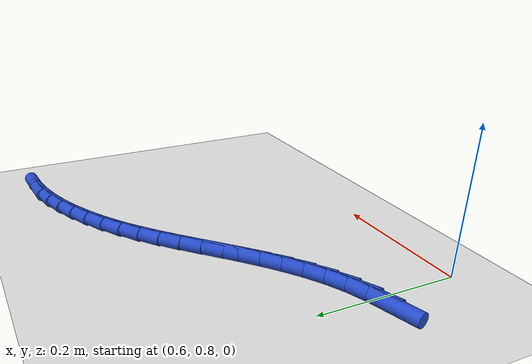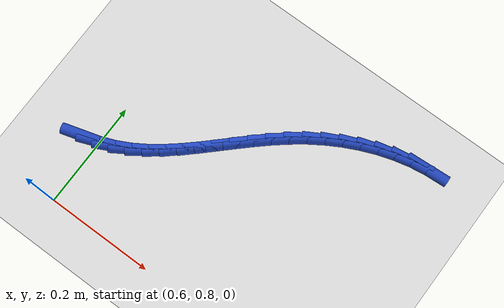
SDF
<sdf version="1.6">
 <world name="default">
  <model name="ground_plane">
   <static>1</static>
   <link name="link">
    <collision name="collision">
     <geometry><plane><normal>0 0 1</normal><size>100 100</size></plane></geometry>
     <surface><friction><ode><mu>100</mu><mu2>50</mu2></ode></friction></surface>
    </collision>
    <visual name="visual">
     <cast_shadows>0</cast_shadows>
     <geometry><plane><normal>0 0 1</normal><size>100 100</size></plane></geometry>
     <material>
      <script><uri>file://media/materials/scripts/gazebo.material</uri><name>Gazebo/WhiteGlow</name></script>
     </material>
    </visual>
   </link>
  </model>
  <model name="line">
   <link name="link_39">
    <pose>0.5722655813430882 0.918569640535079 0.01 0 1.57 0.2812873443849104</pose>
    <collision name="collision">
     <geometry><cylinder><radius>0.01</radius><length>0.08</length></cylinder></geometry>
    </collision>
    <visual name="visual">
     <material>
      <script><name>Gazebo/Blue</name><uri>file://media/materials/scripts/gazebo.material</uri></script>
     </material>
     <geometry><cylinder><radius>0.01</radius><length>0.08</length></cylinder></geometry>
    </visual>
   </link>
   <link name="link_40">
    <pose>0.600560603302576 0.9267454484883436 0.01 0 1.57 0.37011426301411954</pose>
    <collision name="collision">
     <geometry><cylinder><radius>0.01</radius><length>0.08</length></cylinder></geometry>
    </collision>
    <visual name="visual">
     <material>
      <script><name>Gazebo/Blue</name><uri>file://media/materials/scripts/gazebo.material</uri></script>
     </material>
     <geometry><cylinder><radius>0.01</radius><length>0.08</length></cylinder></geometry>
    </visual>
   </link>
   <link name="link_41">
    <pose>0.6275683668522558 0.9372243154432224 0.01 0 1.57 0.47386962115481096</pose>
    <collision name="collision">
     <geometry><cylinder><radius>0.01</radius><length>0.08</length></cylinder></geometry>
    </collision>
    <visual name="visual">
     <material>
      <script><name>Gazebo/Blue</name><uri>file://media/materials/scripts/gazebo.material</uri></script>
     </material>
     <geometry><cylinder><radius>0.01</radius><length>0.08</length></cylinder></geometry>
    </visual>
   </link>
   <link name="link_42">
    <pose>0.6531551014019836 0.9503463086627927 0.01 0 1.57 0.5639347500437251</pose>
    <collision name="collision">
     <geometry><cylinder><radius>0.01</radius><length>0.08</length></cylinder></geometry>
    </collision>
    <visual name="visual">
     <material>
      <script><name>Gazebo/Blue</name><uri>file://media/materials/scripts/gazebo.material</uri></script>
     </material>
     <geometry><cylinder><radius>0.01</radius><length>0.08</length></cylinder></geometry>
    </visual>
   </link>
   <link name="link_43">
    <pose>0.6775470113462687 0.9657728375672602 0.01 0 1.57 0.6368800323419674</pose>
    <collision name="collision">
     <geometry><cylinder><radius>0.01</radius><length>0.08</length></cylinder></geometry>
    </collision>
    <visual name="visual">
     <material>
      <script><name>Gazebo/Blue</name><uri>file://media/materials/scripts/gazebo.material</uri></script>
     </material>
     <geometry><cylinder><radius>0.01</radius><length>0.08</length></cylinder></geometry>
    </visual>
   </link>
   <link name="link_44">
    <pose>0.7009954961072249 0.9831178116009573 0.01 0 1.57 0.6924937310259418</pose>
    <collision name="collision">
     <geometry><cylinder><radius>0.01</radius><length>0.08</length></cylinder></geometry>
    </collision>
    <visual name="visual">
     <material>
      <script><name>Gazebo/Blue</name><uri>file://media/materials/scripts/gazebo.material</uri></script>
     </material>
     <geometry><cylinder><radius>0.01</radius><length>0.08</length></cylinder></geometry>
    </visual>
   </link>
   <link name="link_45">
    <pose>0.7237519551069673 1.0019951402082168 0.01 0 1.57 0.7313113552406284</pose>
    <collision name="collision">
     <geometry><cylinder><radius>0.01</radius><length>0.08</length></cylinder></geometry>
    </collision>
    <visual name="visual">
     <material>
      <script><name>Gazebo/Blue</name><uri>file://media/materials/scripts/gazebo.material</uri></script>
     </material>
     <geometry><cylinder><radius>0.01</radius><length>0.08</length></cylinder></geometry>
    </visual>
   </link>
   <link name="link_46">
    <pose>0.7460677877676102 1.0220187328333719 0.01 0 1.57 0.7541143152115496</pose>
    <collision name="collision">
     <geometry><cylinder><radius>0.01</radius><length>0.08</length></cylinder></geometry>
    </collision>
    <visual name="visual">
     <material>
      <script><name>Gazebo/Blue</name><uri>file://media/materials/scripts/gazebo.material</uri></script>
     </material>
     <geometry><cylinder><radius>0.01</radius><length>0.08</length></cylinder></geometry>
    </visual>
   </link>
   <link name="link_47">
    <pose>0.7681943935112682 1.0428024989207547 0.01 0 1.57 0.7616192674383127</pose>
    <collision name="collision">
     <geometry><cylinder><radius>0.01</radius><length>0.08</length></cylinder></geometry>
    </collision>
    <visual name="visual">
     <material>
      <script><name>Gazebo/Blue</name><uri>file://media/materials/scripts/gazebo.material</uri></script>
     </material>
     <geometry><cylinder><radius>0.01</radius><length>0.08</length></cylinder></geometry>
    </visual>
   </link>
   <link name="link_48">
    <pose>0.7903831717600556 1.0639603479146982 0.01 0 1.57 0.7543299265297234</pose>
    <collision name="collision">
     <geometry><cylinder><radius>0.01</radius><length>0.08</length></cylinder></geometry>
    </collision>
    <visual name="visual">
     <material>
      <script><name>Gazebo/Blue</name><uri>file://media/materials/scripts/gazebo.material</uri></script>
     </material>
     <geometry><cylinder><radius>0.01</radius><length>0.08</length></cylinder></geometry>
    </visual>
   </link>
   <link name="link_49">
    <pose>0.8128855219360867 1.0851061892595348 0.01 0 1.57 0.7325073360217118</pose>
    <collision name="collision">
     <geometry><cylinder><radius>0.01</radius><length>0.08</length></cylinder></geometry>
    </collision>
    <visual name="visual">
     <material>
      <script><name>Gazebo/Blue</name><uri>file://media/materials/scripts/gazebo.material</uri></script>
     </material>
     <geometry><cylinder><radius>0.01</radius><length>0.08</length></cylinder></geometry>
    </visual>
   </link>
   <link name="link_50">
    <pose>0.8359528434614767 1.1058539323995975 0.01 0 1.57 0.6962308092457923</pose>
    <collision name="collision">
     <geometry><cylinder><radius>0.01</radius><length>0.08</length></cylinder></geometry>
    </collision>
    <visual name="visual">
     <material>
      <script><name>Gazebo/Blue</name><uri>file://media/materials/scripts/gazebo.material</uri></script>
     </material>
     <geometry><cylinder><radius>0.01</radius><length>0.08</length></cylinder></geometry>
    </visual>
   </link>
   <link name="link_51">
    <pose>0.8598365357583396 1.125817486779219 0.01 0 1.57 0.6455421104442264</pose>
    <collision name="collision">
     <geometry><cylinder><radius>0.01</radius><length>0.08</length></cylinder></geometry>
    </collision>
    <visual name="visual">
     <material>
      <script><name>Gazebo/Blue</name><uri>file://media/materials/scripts/gazebo.material</uri></script>
     </material>
     <geometry><cylinder><radius>0.01</radius><length>0.08</length></cylinder></geometry>
    </visual>
   </link>
   <link name="link_52">
    <pose>0.8847879854943734 1.1446107679804778 0.01 0 1.57 0.5833823803697511</pose>
    <collision name="collision">
     <geometry><cylinder><radius>0.01</radius><length>0.08</length></cylinder></geometry>
    </collision>
    <visual name="visual">
     <material>
      <script><name>Gazebo/Blue</name><uri>file://media/materials/scripts/gazebo.material</uri></script>
     </material>
     <geometry><cylinder><radius>0.01</radius><length>0.08</length></cylinder></geometry>
    </visual>
   </link>
   <link name="link_53">
    <pose>0.910969183622218 1.1618907110521919 0.01 0 1.57 0.5187806332710961</pose>
    <collision name="collision">
     <geometry><cylinder><radius>0.01</radius><length>0.08</length></cylinder></geometry>
    </collision>
    <visual name="visual">
     <material>
      <script><name>Gazebo/Blue</name><uri>file://media/materials/scripts/gazebo.material</uri></script>
     </material>
     <geometry><cylinder><radius>0.01</radius><length>0.08</length></cylinder></geometry>
    </visual>
   </link>
   <link name="link_54">
    <pose>0.9382388816818173 1.1774601774762277 0.01 0 1.57 0.45268795659579786</pose>
    <collision name="collision">
     <geometry><cylinder><radius>0.01</radius><length>0.08</length></cylinder></geometry>
    </collision>
    <visual name="visual">
     <material>
      <script><name>Gazebo/Blue</name><uri>file://media/materials/scripts/gazebo.material</uri></script>
     </material>
     <geometry><cylinder><radius>0.01</radius><length>0.08</length></cylinder></geometry>
    </visual>
   </link>
   <link name="link_55">
    <pose>0.9663915949534007 1.19115294083842 0.01 0 1.57 0.38402191226503923</pose>
    <collision name="collision">
     <geometry><cylinder><radius>0.01</radius><length>0.08</length></cylinder></geometry>
    </collision>
    <visual name="visual">
     <material>
      <script><name>Gazebo/Blue</name><uri>file://media/materials/scripts/gazebo.material</uri></script>
     </material>
     <geometry><cylinder><radius>0.01</radius><length>0.08</length></cylinder></geometry>
    </visual>
   </link>
   <link name="link_56">
    <pose>0.9952218387171993 1.2028027747246057 0.01 0 1.57 0.3116812465148708</pose>
    <collision name="collision">
     <geometry><cylinder><radius>0.01</radius><length>0.08</length></cylinder></geometry>
    </collision>
    <visual name="visual">
     <material>
      <script><name>Gazebo/Blue</name><uri>file://media/materials/scripts/gazebo.material</uri></script>
     </material>
     <geometry><cylinder><radius>0.01</radius><length>0.08</length></cylinder></geometry>
    </visual>
   </link>
   <link name="link_57">
    <pose>1.0245241282534419 1.2122434527206178 0.01 0 1.57 0.23454613481737252</pose>
    <collision name="collision">
     <geometry><cylinder><radius>0.01</radius><length>0.08</length></cylinder></geometry>
    </collision>
    <visual name="visual">
     <material>
      <script><name>Gazebo/Blue</name><uri>file://media/materials/scripts/gazebo.material</uri></script>
     </material>
     <geometry><cylinder><radius>0.01</radius><length>0.08</length></cylinder></geometry>
    </visual>
   </link>
   <link name="link_58">
    <pose>1.0540929788423585 1.2193087484122926 0.01 0 1.57 0.15150300358352195</pose>
    <collision name="collision">
     <geometry><cylinder><radius>0.01</radius><length>0.08</length></cylinder></geometry>
    </collision>
    <visual name="visual">
     <material>
      <script><name>Gazebo/Blue</name><uri>file://media/materials/scripts/gazebo.material</uri></script>
     </material>
     <geometry><cylinder><radius>0.01</radius><length>0.08</length></cylinder></geometry>
    </visual>
   </link>
   <link name="link_59">
    <pose>1.0837229057641797 1.2238324353854655 0.01 0 1.57 0.06150685175452811</pose>
    <collision name="collision">
     <geometry><cylinder><radius>0.01</radius><length>0.08</length></cylinder></geometry>
    </collision>
    <visual name="visual">
     <material>
      <script><name>Gazebo/Blue</name><uri>file://media/materials/scripts/gazebo.material</uri></script>
     </material>
     <geometry><cylinder><radius>0.01</radius><length>0.08</length></cylinder></geometry>
    </visual>
   </link>
  </model>
 </world>
</sdf>
